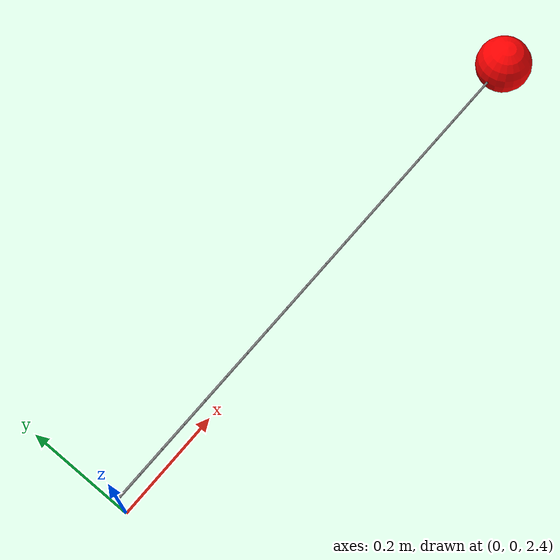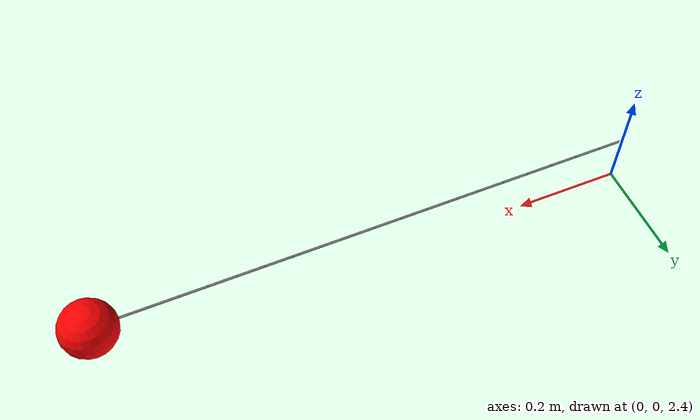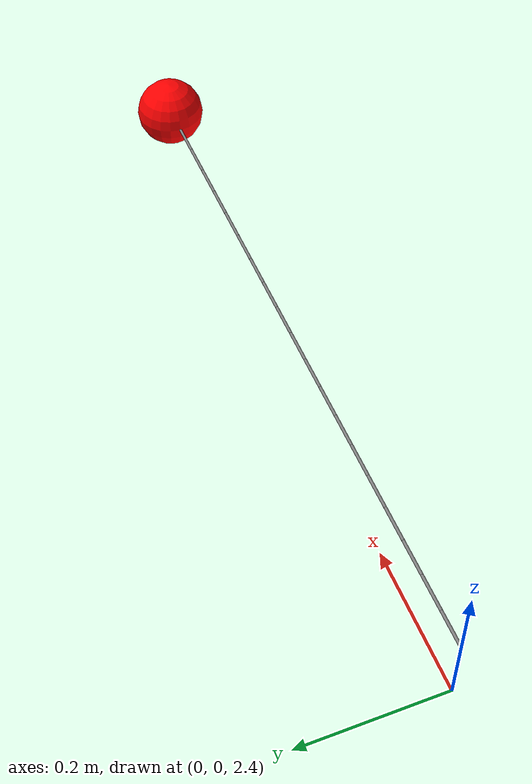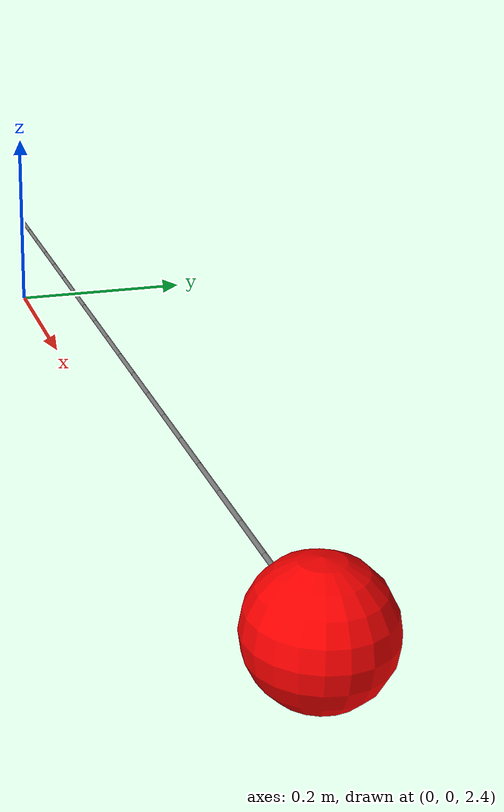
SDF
<sdf version="1.9">
 <world name="UAV_slung_world">
  <plugin filename="gz-sim-physics-system" name="gz::sim::systems::Physics"/>
  <plugin filename="gz-sim-user-commands-system" name="gz::sim::systems::UserCommands"/>
  <plugin filename="gz-sim-scene-broadcaster-system" name="gz::sim::systems::SceneBroadcaster"/>
  <plugin filename="gz-sim-sensors-system" name="gz::sim::systems::Sensors">
   <render_engine>ogre2</render_engine>
  </plugin>
  <plugin filename="gz-sim-contact-system" name="gz::sim::systems::Contact"/>
  <plugin filename="gz-sim-wind-effects-system" name="gz::sim::systems::WindEffects">
   <force_approximation_scaling_factor>1</force_approximation_scaling_factor>
   <linear_velocity>0 0 0</linear_velocity>
  </plugin>
  <plugin filename="gz-sim-imu-system" name="gz::sim::systems::Imu"/>
  <plugin filename="gz-sim-magnetometer-system" name="gz::sim::systems::Magnetometer"/>
  <plugin filename="gz-sim-altimeter-system" name="gz::sim::systems::Altimeter"/>
  <plugin filename="gz-sim-navsat-system" name="gz::sim::systems::NavSat"/>
  <plugin filename="gz-sim-air-pressure-system" name="gz::sim::systems::AirPressure"/>
  <physics type="ode">
   <max_step_size>0.0025</max_step_size>
   <real_time_factor>1.0</real_time_factor>
   <real_time_update_rate>400</real_time_update_rate>
  </physics>
  <gravity>0 0 -9.81</gravity>
  <magnetic_field>6e-06 2.3e-05 -4.2e-05</magnetic_field>
  <atmosphere type="adiabatic"/>
  <scene>
   <grid>true</grid>
   <ambient>0.4 0.4 0.4 1</ambient>
   <background>0.7 0.7 0.7 1</background>
   <shadows>true</shadows>
  </scene>
  <model name="ground_plane">
   <static>true</static>
   <link name="link">
    <collision name="collision">
     <geometry><plane><normal>0 0 1</normal><size>500 500</size></plane></geometry>
    </collision>
    <visual name="visual">
     <geometry><plane><normal>0 0 1</normal><size>500 500</size></plane></geometry>
     <material>
      <ambient>0.8 0.8 0.8 1</ambient>
      <diffuse>0.8 0.8 0.8 1</diffuse>
      <specular>0.8 0.8 0.8 1</specular>
     </material>
    </visual>
    <inertial>
     <mass>1</mass>
     <inertia><ixx>1</ixx><ixy>0</ixy><ixz>0</ixz><iyy>1</iyy><iyz>0</iyz><izz>1</izz></inertia>
    </inertial>
   </link>
  </model>
  <light name="sunUTC" type="directional">
   <pose>0 0 500 0 -0 0</pose>
   <intensity>1</intensity>
   <direction>0.001 0.625 -0.78</direction>
   <diffuse>0.904 0.904 0.904 1</diffuse>
   <specular>0.271 0.271 0.271 1</specular>
   <attenuation><range>2000</range><linear>0</linear><constant>1</constant><quadratic>0</quadratic></attenuation>
  </light>
  <spherical_coordinates>
   <surface_model>EARTH_WGS84</surface_model>
   <world_frame_orientation>ENU</world_frame_orientation>
   <latitude_deg>24.623911</latitude_deg>
   <longitude_deg>118.087898</longitude_deg>
   <elevation>0</elevation>
  </spherical_coordinates>
  <include>
   <name>payload_ball</name>
   <pose>1.0 0 2.5 0 0 0</pose>
   <uri>model://payload_ball</uri>
   <plugin filename="gz-sim-pose-publisher-system" name="gz::sim::systems::PosePublisher">
    <publish_link_pose>false</publish_link_pose>
    <publish_visual_pose>false</publish_visual_pose>
    <publish_collision_pose>false</publish_collision_pose>
    <publish_sensor_pose>false</publish_sensor_pose>
    <publish_model_pose>true</publish_model_pose>
    <use_pose_vector_msg>false</use_pose_vector_msg>
    <update_frequency>200</update_frequency>
   </plugin>
  </include>
  <include><name>rope</name><pose>1.0 0 2.5 0 0 3.14159</pose><uri>model://rope</uri></include>
  <joint name="uav_rope_joint" type="fixed">
   <parent>rope::end_link</parent>
   <child>x500_mono_cam_down::base_link</child>
  </joint>
  <joint name="ball_rope_joint" type="fixed">
   <parent>payload_ball::ball_link</parent>
   <child>rope::begin_link</child>
  </joint>
 </world>
</sdf>

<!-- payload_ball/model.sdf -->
<sdf version='1.9'>
  <model name="red_ball">
    <link name="ball_link">
      <pose>0 0 0 0 0 0</pose>

      <collision name="collision">
        <geometry>
          <sphere>
            <radius>0.05</radius>
          </sphere>
        </geometry>
      </collision>

      <visual name="visual">
        <geometry>
          <sphere>
            <radius>0.05</radius>
          </sphere>
        </geometry>
        <material>
          <ambient>1.0 0.0 0.0 1</ambient>
          <diffuse>1.0 0.0 0.0 1</diffuse>
          <specular>0.3 0.1 0.1 1</specular>
        </material>
      </visual>

      <inertial>
        <mass>0.5</mass>
        <inertia>
          <ixx>0.001</ixx>
          <iyy>0.001</iyy>
          <izz>0.001</izz>
          <ixy>0</ixy>
          <ixz>0</ixz>
          <iyz>0</iyz>
        </inertia>
      </inertial>

      <sensor name="ball_imu" type="imu">
        <always_on>1</always_on>
        <update_rate>250</update_rate>
        <visualize>true</visualize>
        <imu>
          </imu>
      </sensor>

    </link>
  </model>
</sdf>

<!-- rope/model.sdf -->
<sdf version='1.9'>
  <model name='rope'>
    <enable_wind>true</enable_wind>
    <static>false</static>
    <link name='begin_link'>
      <pose>0 0 0 0 0 0</pose>
      <inertial>
        <mass>0.001</mass>
        <inertia>
          <ixx>4e-08</ixx>
          <iyy>4e-08</iyy>
          <izz>4e-08</izz>
        </inertia>
      </inertial>
       <collision name='begin_link_collision'>
        <geometry>
          <sphere>
            <radius>0.002</radius>
          </sphere>
        </geometry>
      </collision>
      <visual name='begin_link_visual'>
        <geometry>
          <sphere>
            <radius>0.002</radius>
          </sphere>
        </geometry>
      </visual>
    </link>
    <link name='link_0'>
      <pose>0.025 0 0 0 1.570796326794896558 0</pose>
      <inertial>
        <mass>0.0024</mass>
        <inertia>
          <ixx>5.1e-05</ixx>
          <iyy>5.1e-05</iyy>
          <izz>3.0e-06</izz>
        </inertia>
      </inertial>
       <collision name='link_0_collision'>
        <geometry>
          <cylinder>
            <length>0.05</length>
            <radius>0.002</radius>
          </cylinder>
        </geometry>
      </collision>
      <visual name='link_0_vis'>
        <geometry>
          <cylinder>
            <length>0.05</length>
            <radius>0.002</radius>
          </cylinder>
        </geometry>
        <material>
          <ambient>0.5 0.5 0.5 1</ambient>
          <diffuse>0.5 0.5 0.5 1</diffuse>
          <specular>0.5 0.5 0.5 1</specular>
        </material>
      </visual>
      <velocity_decay>
        <linear>0.1</linear>
        <angular>0.1</angular>
      </velocity_decay>
    </link>
    <joint name='begin_joint_2' type='universal'>
      <pose relative_to='begin_link'/>
      <child>link_0</child>
      <parent>begin_link</parent>
      <axis>
        <xyz>1 0 0</xyz>
        <dynamics>
          <damping>0.05</damping>
        </dynamics>
      </axis>
      <axis2>
        <xyz>0 1 0</xyz>
        <dynamics>
          <damping>0.05</damping>
        </dynamics>
      </axis2>
    </joint>

    <link name='link_1'>
      <pose>0.07500000000000001 0 0 0 1.570796326794896558 0</pose>
      <inertial>
        <mass>0.0024</mass>
        <inertia>
          <ixx>5.1e-05</ixx>
          <iyy>5.1e-05</iyy>
          <izz>3.0e-06</izz>
        </inertia>
      </inertial>
       <collision name='link_1_collision'>
        <geometry>
          <cylinder>
            <length>0.05</length>
            <radius>0.002</radius>
          </cylinder>
        </geometry>
      </collision>
      <visual name='link_1_vis'>
        <geometry>
          <cylinder>
            <length>0.05</length>
            <radius>0.002</radius>
          </cylinder>
        </geometry>
        <material>
          <ambient>0.5 0.5 0.5 1</ambient>
          <diffuse>0.5 0.5 0.5 1</diffuse>
          <specular>0.5 0.5 0.5 1</specular>
        </material>
      </visual>
      <velocity_decay>
        <linear>0.1</linear>
        <angular>0.1</angular>
      </velocity_decay>
    </link>
    <joint name='joint_1_2' type='universal'>
      <pose relative_to='link_0'>0 0 0.025 0 0 0</pose>
      <child>link_1</child>
      <parent>link_0</parent>
      <axis>
        <xyz expressed_in='link_0'>1 0 0</xyz>
        <limit>
          <lower>-3.141592653589793</lower>
          <upper>3.141592653589793</upper>
          <effort>50.0</effort>
          <velocity>10</velocity>
        </limit>
        <dynamics>
          <damping>0.05</damping>
        </dynamics>
      </axis>
      <axis2>
        <xyz expressed_in='link_0'>0 1 0</xyz>
        <limit>
          <lower>-3.141592653589793</lower>
          <upper>3.141592653589793</upper>
          <effort>50.0</effort>
          <velocity>10</velocity>
        </limit>
        <dynamics>
          <damping>0.05</damping>
        </dynamics>
      </axis2>
    </joint>
    <link name='link_2'>
      <pose>0.125 0 0 0 1.570796326794896558 0</pose>
      <inertial>
        <mass>0.0024</mass>
        <inertia>
          <ixx>5.1e-05</ixx>
          <iyy>5.1e-05</iyy>
          <izz>3.0e-06</izz>
        </inertia>
      </inertial>
       <collision name='link_2_collision'>
        <geometry>
          <cylinder>
            <length>0.05</length>
            <radius>0.002</radius>
          </cylinder>
        </geometry>
      </collision>
      <visual name='link_2_vis'>
        <geometry>
          <cylinder>
            <length>0.05</length>
            <radius>0.002</radius>
          </cylinder>
        </geometry>
        <material>
          <ambient>0.5 0.5 0.5 1</ambient>
          <diffuse>0.5 0.5 0.5 1</diffuse>
          <specular>0.5 0.5 0.5 1</specular>
        </material>
      </visual>
      <velocity_decay>
        <linear>0.1</linear>
        <angular>0.1</angular>
      </velocity_decay>
    </link>
    <joint name='joint_2_2' type='universal'>
      <pose relative_to='link_1'>0 0 0.025 0 0 0</pose>
      <child>link_2</child>
      <parent>link_1</parent>
      <axis>
        <xyz expressed_in='link_1'>1 0 0</xyz>
        <limit>
          <lower>-3.141592653589793</lower>
          <upper>3.141592653589793</upper>
          <effort>50.0</effort>
          <velocity>10</velocity>
        </limit>
        <dynamics>
          <damping>0.05</damping>
        </dynamics>
      </axis>
      <axis2>
        <xyz expressed_in='link_1'>0 1 0</xyz>
        <limit>
          <lower>-3.141592653589793</lower>
          <upper>3.141592653589793</upper>
          <effort>50.0</effort>
          <velocity>10</velocity>
        </limit>
        <dynamics>
          <damping>0.05</damping>
        </dynamics>
      </axis2>
    </joint>
    <link name='link_3'>
      <pose>0.17500000000000002 0 0 0 1.570796326794896558 0</pose>
      <inertial>
        <mass>0.0024</mass>
        <inertia>
          <ixx>5.1e-05</ixx>
          <iyy>5.1e-05</iyy>
          <izz>3.0e-06</izz>
        </inertia>
      </inertial>
       <collision name='link_3_collision'>
        <geometry>
          <cylinder>
            <length>0.05</length>
            <radius>0.002</radius>
          </cylinder>
        </geometry>
      </collision>
      <visual name='link_3_vis'>
        <geometry>
          <cylinder>
            <length>0.05</length>
            <radius>0.002</radius>
          </cylinder>
        </geometry>
        <material>
          <ambient>0.5 0.5 0.5 1</ambient>
          <diffuse>0.5 0.5 0.5 1</diffuse>
          <specular>0.5 0.5 0.5 1</specular>
        </material>
      </visual>
      <velocity_decay>
        <linear>0.1</linear>
        <angular>0.1</angular>
      </velocity_decay>
    </link>
    <joint name='joint_3_2' type='universal'>
      <pose relative_to='link_2'>0 0 0.025 0 0 0</pose>
      <child>link_3</child>
      <parent>link_2</parent>
      <axis>
        <xyz expressed_in='link_2'>1 0 0</xyz>
        <limit>
          <lower>-3.141592653589793</lower>
          <upper>3.141592653589793</upper>
          <effort>50.0</effort>
          <velocity>10</velocity>
        </limit>
        <dynamics>
          <damping>0.05</damping>
        </dynamics>
      </axis>
      <axis2>
        <xyz expressed_in='link_2'>0 1 0</xyz>
        <limit>
          <lower>-3.141592653589793</lower>
          <upper>3.141592653589793</upper>
          <effort>50.0</effort>
          <velocity>10</velocity>
        </limit>
        <dynamics>
          <damping>0.05</damping>
        </dynamics>
      </axis2>
    </joint>
    <link name='link_4'>
      <pose>0.225 0 0 0 1.570796326794896558 0</pose>
      <inertial>
        <mass>0.0024</mass>
        <inertia>
          <ixx>5.1e-05</ixx>
          <iyy>5.1e-05</iyy>
          <izz>3.0e-06</izz>
        </inertia>
      </inertial>
       <collision name='link_4_collision'>
        <geometry>
          <cylinder>
            <length>0.05</length>
            <radius>0.002</radius>
          </cylinder>
        </geometry>
      </collision>
      <visual name='link_4_vis'>
        <geometry>
          <cylinder>
            <length>0.05</length>
            <radius>0.002</radius>
          </cylinder>
        </geometry>
        <material>
          <ambient>0.5 0.5 0.5 1</ambient>
          <diffuse>0.5 0.5 0.5 1</diffuse>
          <specular>0.5 0.5 0.5 1</specular>
        </material>
      </visual>
      <velocity_decay>
        <linear>0.1</linear>
        <angular>0.1</angular>
      </velocity_decay>
    </link>
    <joint name='joint_4_2' type='universal'>
      <pose relative_to='link_3'>0 0 0.025 0 0 0</pose>
      <child>link_4</child>
      <parent>link_3</parent>
      <axis>
        <xyz expressed_in='link_3'>1 0 0</xyz>
        <limit>
          <lower>-3.141592653589793</lower>
          <upper>3.141592653589793</upper>
          <effort>50.0</effort>
          <velocity>10</velocity>
        </limit>
        <dynamics>
          <damping>0.05</damping>
        </dynamics>
      </axis>
      <axis2>
        <xyz expressed_in='link_3'>0 1 0</xyz>
        <limit>
          <lower>-3.141592653589793</lower>
          <upper>3.141592653589793</upper>
          <effort>50.0</effort>
          <velocity>10</velocity>
        </limit>
        <dynamics>
          <damping>0.05</damping>
        </dynamics>
      </axis2>
    </joint>
    <link name='link_5'>
      <pose>0.275 0 0 0 1.570796326794896558 0</pose>
      <inertial>
        <mass>0.0024</mass>
        <inertia>
          <ixx>5.1e-05</ixx>
          <iyy>5.1e-05</iyy>
          <izz>3.0e-06</izz>
        </inertia>
      </inertial>
       <collision name='link_5_collision'>
        <geometry>
          <cylinder>
            <length>0.05</length>
            <radius>0.002</radius>
          </cylinder>
        </geometry>
      </collision>
      <visual name='link_5_vis'>
        <geometry>
          <cylinder>
            <length>0.05</length>
            <radius>0.002</radius>
          </cylinder>
        </geometry>
        <material>
          <ambient>0.5 0.5 0.5 1</ambient>
          <diffuse>0.5 0.5 0.5 1</diffuse>
          <specular>0.5 0.5 0.5 1</specular>
        </material>
      </visual>
      <velocity_decay>
        <linear>0.1</linear>
        <angular>0.1</angular>
      </velocity_decay>
    </link>
    <joint name='joint_5_2' type='universal'>
      <pose relative_to='link_4'>0 0 0.025 0 0 0</pose>
      <child>link_5</child>
      <parent>link_4</parent>
      <axis>
        <xyz expressed_in='link_4'>1 0 0</xyz>
        <limit>
          <lower>-3.141592653589793</lower>
          <upper>3.141592653589793</upper>
          <effort>50.0</effort>
          <velocity>10</velocity>
        </limit>
        <dynamics>
          <damping>0.05</damping>
        </dynamics>
      </axis>
      <axis2>
        <xyz expressed_in='link_4'>0 1 0</xyz>
        <limit>
          <lower>-3.141592653589793</lower>
          <upper>3.141592653589793</upper>
          <effort>50.0</effort>
          <velocity>10</velocity>
        </limit>
        <dynamics>
          <damping>0.05</damping>
        </dynamics>
      </axis2>
    </joint>
    <link name='link_6'>
      <pose>0.32500000000000007 0 0 0 1.570796326794896558 0</pose>
      <inertial>
        <mass>0.0024</mass>
        <inertia>
          <ixx>5.1e-05</ixx>
          <iyy>5.1e-05</iyy>
          <izz>3.0e-06</izz>
        </inertia>
      </inertial>
       <collision name='link_6_collision'>
        <geometry>
          <cylinder>
            <length>0.05</length>
            <radius>0.002</radius>
          </cylinder>
        </geometry>
      </collision>
      <visual name='link_6_vis'>
        <geometry>
          <cylinder>
            <length>0.05</length>
            <radius>0.002</radius>
          </cylinder>
        </geometry>
        <material>
          <ambient>0.5 0.5 0.5 1</ambient>
          <diffuse>0.5 0.5 0.5 1</diffuse>
          <specular>0.5 0.5 0.5 1</specular>
        </material>
      </visual>
      <velocity_decay>
        <linear>0.1</linear>
        <angular>0.1</angular>
      </velocity_decay>
    </link>
    <joint name='joint_6_2' type='universal'>
      <pose relative_to='link_5'>0 0 0.025 0 0 0</pose>
      <child>link_6</child>
      <parent>link_5</parent>
      <axis>
        <xyz expressed_in='link_5'>1 0 0</xyz>
        <limit>
          <lower>-3.141592653589793</lower>
          <upper>3.141592653589793</upper>
          <effort>50.0</effort>
          <velocity>10</velocity>
        </limit>
        <dynamics>
          <damping>0.05</damping>
        </dynamics>
      </axis>
      <axis2>
        <xyz expressed_in='link_5'>0 1 0</xyz>
        <limit>
          <lower>-3.141592653589793</lower>
          <upper>3.141592653589793</upper>
          <effort>50.0</effort>
          <velocity>10</velocity>
        </limit>
        <dynamics>
          <damping>0.05</damping>
        </dynamics>
      </axis2>
    </joint>
    <link name='link_7'>
      <pose>0.37500000000000006 0 0 0 1.570796326794896558 0</pose>
      <inertial>
        <mass>0.0024</mass>
        <inertia>
          <ixx>5.1e-05</ixx>
          <iyy>5.1e-05</iyy>
          <izz>3.0e-06</izz>
        </inertia>
      </inertial>
       <collision name='link_7_collision'>
        <geometry>
          <cylinder>
            <length>0.05</length>
            <radius>0.002</radius>
          </cylinder>
        </geometry>
      </collision>
      <visual name='link_7_vis'>
        <geometry>
          <cylinder>
            <length>0.05</length>
            <radius>0.002</radius>
          </cylinder>
        </geometry>
        <material>
          <ambient>0.5 0.5 0.5 1</ambient>
          <diffuse>0.5 0.5 0.5 1</diffuse>
          <specular>0.5 0.5 0.5 1</specular>
        </material>
      </visual>
      <velocity_decay>
        <linear>0.1</linear>
        <angular>0.1</angular>
      </velocity_decay>
    </link>
    <joint name='joint_7_2' type='universal'>
      <pose relative_to='link_6'>0 0 0.025 0 0 0</pose>
      <child>link_7</child>
      <parent>link_6</parent>
      <axis>
        <xyz expressed_in='link_6'>1 0 0</xyz>
        <limit>
          <lower>-3.141592653589793</lower>
          <upper>3.141592653589793</upper>
          <effort>50.0</effort>
          <velocity>10</velocity>
        </limit>
        <dynamics>
          <damping>0.05</damping>
        </dynamics>
      </axis>
      <axis2>
        <xyz expressed_in='link_6'>0 1 0</xyz>
        <limit>
          <lower>-3.141592653589793</lower>
          <upper>3.141592653589793</upper>
          <effort>50.0</effort>
          <velocity>10</velocity>
        </limit>
        <dynamics>
          <damping>0.05</damping>
        </dynamics>
      </axis2>
    </joint>
    <link name='link_8'>
      <pose>0.42500000000000004 0 0 0 1.570796326794896558 0</pose>
      <inertial>
        <mass>0.0024</mass>
        <inertia>
          <ixx>5.1e-05</ixx>
          <iyy>5.1e-05</iyy>
          <izz>3.0e-06</izz>
        </inertia>
      </inertial>
       <collision name='link_8_collision'>
        <geometry>
          <cylinder>
            <length>0.05</length>
            <radius>0.002</radius>
          </cylinder>
        </geometry>
      </collision>
      <visual name='link_8_vis'>
        <geometry>
          <cylinder>
            <length>0.05</length>
            <radius>0.002</radius>
          </cylinder>
        </geometry>
        <material>
          <ambient>0.5 0.5 0.5 1</ambient>
          <diffuse>0.5 0.5 0.5 1</diffuse>
          <specular>0.5 0.5 0.5 1</specular>
        </material>
      </visual>
      <velocity_decay>
        <linear>0.1</linear>
        <angular>0.1</angular>
      </velocity_decay>
    </link>
    <joint name='joint_8_2' type='universal'>
      <pose relative_to='link_7'>0 0 0.025 0 0 0</pose>
      <child>link_8</child>
      <parent>link_7</parent>
      <axis>
        <xyz expressed_in='link_7'>1 0 0</xyz>
        <limit>
          <lower>-3.141592653589793</lower>
          <upper>3.141592653589793</upper>
          <effort>50.0</effort>
          <velocity>10</velocity>
        </limit>
        <dynamics>
          <damping>0.05</damping>
        </dynamics>
      </axis>
      <axis2>
        <xyz expressed_in='link_7'>0 1 0</xyz>
        <limit>
          <lower>-3.141592653589793</lower>
          <upper>3.141592653589793</upper>
          <effort>50.0</effort>
          <velocity>10</velocity>
        </limit>
        <dynamics>
          <damping>0.05</damping>
        </dynamics>
      </axis2>
    </joint>
    <link name='link_9'>
      <pose>0.47500000000000003 0 0 0 1.570796326794896558 0</pose>
      <inertial>
        <mass>0.0024</mass>
        <inertia>
          <ixx>5.1e-05</ixx>
          <iyy>5.1e-05</iyy>
          <izz>3.0e-06</izz>
        </inertia>
      </inertial>
       <collision name='link_9_collision'>
        <geometry>
          <cylinder>
            <length>0.05</length>
            <radius>0.002</radius>
          </cylinder>
        </geometry>
      </collision>
      <visual name='link_9_vis'>
        <geometry>
          <cylinder>
            <length>0.05</length>
            <radius>0.002</radius>
          </cylinder>
        </geometry>
        <material>
          <ambient>0.5 0.5 0.5 1</ambient>
          <diffuse>0.5 0.5 0.5 1</diffuse>
          <specular>0.5 0.5 0.5 1</specular>
        </material>
      </visual>
      <velocity_decay>
        <linear>0.1</linear>
        <angular>0.1</angular>
      </velocity_decay>
    </link>
    <joint name='joint_9_2' type='universal'>
      <pose relative_to='link_8'>0 0 0.025 0 0 0</pose>
      <child>link_9</child>
      <parent>link_8</parent>
      <axis>
        <xyz expressed_in='link_8'>1 0 0</xyz>
        <limit>
          <lower>-3.141592653589793</lower>
          <upper>3.141592653589793</upper>
          <effort>50.0</effort>
          <velocity>10</velocity>
        </limit>
        <dynamics>
          <damping>0.05</damping>
        </dynamics>
      </axis>
      <axis2>
        <xyz expressed_in='link_8'>0 1 0</xyz>
        <limit>
          <lower>-3.141592653589793</lower>
          <upper>3.141592653589793</upper>
          <effort>50.0</effort>
          <velocity>10</velocity>
        </limit>
        <dynamics>
          <damping>0.05</damping>
        </dynamics>
      </axis2>
    </joint>
    <link name='link_10'>
      <pose>0.525 0 0 0 1.570796326794896558 0</pose>
      <inertial>
        <mass>0.0024</mass>
        <inertia>
          <ixx>5.1e-05</ixx>
          <iyy>5.1e-05</iyy>
          <izz>3.0e-06</izz>
        </inertia>
      </inertial>
       <collision name='link_10_collision'>
        <geometry>
          <cylinder>
            <length>0.05</length>
            <radius>0.002</radius>
          </cylinder>
        </geometry>
      </collision>
      <visual name='link_10_vis'>
        <geometry>
          <cylinder>
            <length>0.05</length>
            <radius>0.002</radius>
          </cylinder>
        </geometry>
        <material>
          <ambient>0.5 0.5 0.5 1</ambient>
          <diffuse>0.5 0.5 0.5 1</diffuse>
          <specular>0.5 0.5 0.5 1</specular>
        </material>
      </visual>
      <velocity_decay>
        <linear>0.1</linear>
        <angular>0.1</angular>
      </velocity_decay>
      <sensor name="rope_imu" type="imu">
        <always_on>1</always_on>
        <update_rate>250</update_rate>
        <visualize>true</visualize>
      </sensor>
    </link>
    <joint name='joint_10_2' type='universal'>
      <pose relative_to='link_9'>0 0 0.025 0 0 0</pose>
      <child>link_10</child>
      <parent>link_9</parent>
      <axis>
        <xyz expressed_in='link_9'>1 0 0</xyz>
        <limit>
          <lower>-3.141592653589793</lower>
          <upper>3.141592653589793</upper>
          <effort>50.0</effort>
          <velocity>10</velocity>
        </limit>
        <dynamics>
          <damping>0.05</damping>
        </dynamics>
      </axis>
      <axis2>
        <xyz expressed_in='link_9'>0 1 0</xyz>
        <limit>
          <lower>-3.141592653589793</lower>
          <upper>3.141592653589793</upper>
          <effort>50.0</effort>
          <velocity>10</velocity>
        </limit>
        <dynamics>
          <damping>0.05</damping>
        </dynamics>
      </axis2>
    </joint>
    <link name='link_11'>
      <pose>0.5750000000000001 0 0 0 1.570796326794896558 0</pose>
      <inertial>
        <mass>0.0024</mass>
        <inertia>
          <ixx>5.1e-05</ixx>
          <iyy>5.1e-05</iyy>
          <izz>3.0e-06</izz>
        </inertia>
      </inertial>
       <collision name='link_11_collision'>
        <geometry>
          <cylinder>
            <length>0.05</length>
            <radius>0.002</radius>
          </cylinder>
        </geometry>
      </collision>
      <visual name='link_11_vis'>
        <geometry>
          <cylinder>
            <length>0.05</length>
            <radius>0.002</radius>
          </cylinder>
        </geometry>
        <material>
          <ambient>0.5 0.5 0.5 1</ambient>
          <diffuse>0.5 0.5 0.5 1</diffuse>
          <specular>0.5 0.5 0.5 1</specular>
        </material>
      </visual>
      <velocity_decay>
        <linear>0.1</linear>
        <angular>0.1</angular>
      </velocity_decay>
    </link>
    <joint name='joint_11_2' type='universal'>
      <pose relative_to='link_10'>0 0 0.025 0 0 0</pose>
      <child>link_11</child>
      <parent>link_10</parent>
      <axis>
        <xyz expressed_in='link_10'>1 0 0</xyz>
        <limit>
          <lower>-3.141592653589793</lower>
          <upper>3.141592653589793</upper>
          <effort>50.0</effort>
          <velocity>10</velocity>
        </limit>
        <dynamics>
          <damping>0.05</damping>
        </dynamics>
      </axis>
      <axis2>
        <xyz expressed_in='link_10'>0 1 0</xyz>
        <limit>
          <lower>-3.141592653589793</lower>
          <upper>3.141592653589793</upper>
          <effort>50.0</effort>
          <velocity>10</velocity>
        </limit>
        <dynamics>
          <damping>0.05</damping>
        </dynamics>
      </axis2>
    </joint>
    <link name='link_12'>
      <pose>0.6250000000000001 0 0 0 1.570796326794896558 0</pose>
      <inertial>
        <mass>0.0024</mass>
        <inertia>
          <ixx>5.1e-05</ixx>
          <iyy>5.1e-05</iyy>
          <izz>3.0e-06</izz>
        </inertia>
      </inertial>
       <collision name='link_12_collision'>
        <geometry>
          <cylinder>
            <length>0.05</length>
            <radius>0.002</radius>
          </cylinder>
        </geometry>
      </collision>
      <visual name='link_12_vis'>
        <geometry>
          <cylinder>
            <length>0.05</length>
            <radius>0.002</radius>
          </cylinder>
        </geometry>
        <material>
          <ambient>0.5 0.5 0.5 1</ambient>
          <diffuse>0.5 0.5 0.5 1</diffuse>
          <specular>0.5 0.5 0.5 1</specular>
        </material>
      </visual>
      <velocity_decay>
        <linear>0.1</linear>
        <angular>0.1</angular>
      </velocity_decay>
    </link>
    <joint name='joint_12_2' type='universal'>
      <pose relative_to='link_11'>0 0 0.025 0 0 0</pose>
      <child>link_12</child>
      <parent>link_11</parent>
      <axis>
        <xyz expressed_in='link_11'>1 0 0</xyz>
        <limit>
          <lower>-3.141592653589793</lower>
          <upper>3.141592653589793</upper>
          <effort>50.0</effort>
          <velocity>10</velocity>
        </limit>
        <dynamics>
          <damping>0.05</damping>
        </dynamics>
      </axis>
      <axis2>
        <xyz expressed_in='link_11'>0 1 0</xyz>
        <limit>
          <lower>-3.141592653589793</lower>
          <upper>3.141592653589793</upper>
          <effort>50.0</effort>
          <velocity>10</velocity>
        </limit>
        <dynamics>
          <damping>0.05</damping>
        </dynamics>
      </axis2>
    </joint>
    <link name='link_13'>
      <pose>0.675 0 0 0 1.570796326794896558 0</pose>
      <inertial>
        <mass>0.0024</mass>
        <inertia>
          <ixx>5.1e-05</ixx>
          <iyy>5.1e-05</iyy>
          <izz>3.0e-06</izz>
        </inertia>
      </inertial>
       <collision name='link_13_collision'>
        <geometry>
          <cylinder>
            <length>0.05</length>
            <radius>0.002</radius>
          </cylinder>
        </geometry>
      </collision>
      <visual name='link_13_vis'>
        <geometry>
          <cylinder>
            <length>0.05</length>
            <radius>0.002</radius>
          </cylinder>
        </geometry>
        <material>
          <ambient>0.5 0.5 0.5 1</ambient>
          <diffuse>0.5 0.5 0.5 1</diffuse>
          <specular>0.5 0.5 0.5 1</specular>
        </material>
      </visual>
      <velocity_decay>
        <linear>0.1</linear>
        <angular>0.1</angular>
      </velocity_decay>
    </link>
    <joint name='joint_13_2' type='universal'>
      <pose relative_to='link_12'>0 0 0.025 0 0 0</pose>
      <child>link_13</child>
      <parent>link_12</parent>
      <axis>
        <xyz expressed_in='link_12'>1 0 0</xyz>
        <limit>
          <lower>-3.141592653589793</lower>
          <upper>3.141592653589793</upper>
          <effort>50.0</effort>
          <velocity>10</velocity>
        </limit>
        <dynamics>
          <damping>0.05</damping>
        </dynamics>
      </axis>
      <axis2>
        <xyz expressed_in='link_12'>0 1 0</xyz>
        <limit>
          <lower>-3.141592653589793</lower>
          <upper>3.141592653589793</upper>
          <effort>50.0</effort>
          <velocity>10</velocity>
        </limit>
        <dynamics>
          <damping>0.05</damping>
        </dynamics>
      </axis2>
    </joint>
    <link name='link_14'>
      <pose>0.7250000000000001 0 0 0 1.570796326794896558 0</pose>
      <inertial>
        <mass>0.0024</mass>
        <inertia>
          <ixx>5.1e-05</ixx>
          <iyy>5.1e-05</iyy>
          <izz>3.0e-06</izz>
        </inertia>
      </inertial>
       <collision name='link_14_collision'>
        <geometry>
          <cylinder>
            <length>0.05</length>
            <radius>0.002</radius>
          </cylinder>
        </geometry>
      </collision>
      <visual name='link_14_vis'>
        <geometry>
          <cylinder>
            <length>0.05</length>
            <radius>0.002</radius>
          </cylinder>
        </geometry>
        <material>
          <ambient>0.5 0.5 0.5 1</ambient>
          <diffuse>0.5 0.5 0.5 1</diffuse>
          <specular>0.5 0.5 0.5 1</specular>
        </material>
      </visual>
      <velocity_decay>
        <linear>0.1</linear>
        <angular>0.1</angular>
      </velocity_decay>
    </link>
    <joint name='joint_14_2' type='universal'>
      <pose relative_to='link_13'>0 0 0.025 0 0 0</pose>
      <child>link_14</child>
      <parent>link_13</parent>
      <axis>
        <xyz expressed_in='link_13'>1 0 0</xyz>
        <limit>
          <lower>-3.141592653589793</lower>
          <upper>3.141592653589793</upper>
          <effort>50.0</effort>
          <velocity>10</velocity>
        </limit>
        <dynamics>
          <damping>0.05</damping>
        </dynamics>
      </axis>
      <axis2>
        <xyz expressed_in='link_13'>0 1 0</xyz>
        <limit>
          <lower>-3.141592653589793</lower>
          <upper>3.141592653589793</upper>
          <effort>50.0</effort>
          <velocity>10</velocity>
        </limit>
        <dynamics>
          <damping>0.05</damping>
        </dynamics>
      </axis2>
    </joint>
    <link name='link_15'>
      <pose>0.775 0 0 0 1.570796326794896558 0</pose>
      <inertial>
        <mass>0.0024</mass>
        <inertia>
          <ixx>5.1e-05</ixx>
          <iyy>5.1e-05</iyy>
          <izz>3.0e-06</izz>
        </inertia>
      </inertial>
       <collision name='link_15_collision'>
        <geometry>
          <cylinder>
            <length>0.05</length>
            <radius>0.002</radius>
          </cylinder>
        </geometry>
      </collision>
      <visual name='link_15_vis'>
        <geometry>
          <cylinder>
            <length>0.05</length>
            <radius>0.002</radius>
          </cylinder>
        </geometry>
        <material>
          <ambient>0.5 0.5 0.5 1</ambient>
          <diffuse>0.5 0.5 0.5 1</diffuse>
          <specular>0.5 0.5 0.5 1</specular>
        </material>
      </visual>
      <velocity_decay>
        <linear>0.1</linear>
        <angular>0.1</angular>
      </velocity_decay>
    </link>
    <joint name='joint_15_2' type='universal'>
      <pose relative_to='link_14'>0 0 0.025 0 0 0</pose>
      <child>link_15</child>
      <parent>link_14</parent>
      <axis>
        <xyz expressed_in='link_14'>1 0 0</xyz>
        <limit>
          <lower>-3.141592653589793</lower>
          <upper>3.141592653589793</upper>
          <effort>50.0</effort>
          <velocity>10</velocity>
        </limit>
        <dynamics>
          <damping>0.05</damping>
        </dynamics>
      </axis>
      <axis2>
        <xyz expressed_in='link_14'>0 1 0</xyz>
        <limit>
          <lower>-3.141592653589793</lower>
          <upper>3.141592653589793</upper>
          <effort>50.0</effort>
          <velocity>10</velocity>
        </limit>
        <dynamics>
          <damping>0.05</damping>
        </dynamics>
      </axis2>
    </joint>
    <link name='link_16'>
      <pose>0.8250000000000001 0 0 0 1.570796326794896558 0</pose>
      <inertial>
        <mass>0.0024</mass>
        <inertia>
          <ixx>5.1e-05</ixx>
          <iyy>5.1e-05</iyy>
          <izz>3.0e-06</izz>
        </inertia>
      </inertial>
       <collision name='link_16_collision'>
        <geometry>
          <cylinder>
            <length>0.05</length>
            <radius>0.002</radius>
          </cylinder>
        </geometry>
      </collision>
      <visual name='link_16_vis'>
        <geometry>
          <cylinder>
            <length>0.05</length>
            <radius>0.002</radius>
          </cylinder>
        </geometry>
        <material>
          <ambient>0.5 0.5 0.5 1</ambient>
          <diffuse>0.5 0.5 0.5 1</diffuse>
          <specular>0.5 0.5 0.5 1</specular>
        </material>
      </visual>
      <velocity_decay>
        <linear>0.1</linear>
        <angular>0.1</angular>
      </velocity_decay>
    </link>
    <joint name='joint_16_2' type='universal'>
      <pose relative_to='link_15'>0 0 0.025 0 0 0</pose>
      <child>link_16</child>
      <parent>link_15</parent>
      <axis>
        <xyz expressed_in='link_15'>1 0 0</xyz>
        <limit>
          <lower>-3.141592653589793</lower>
          <upper>3.141592653589793</upper>
          <effort>50.0</effort>
          <velocity>10</velocity>
        </limit>
        <dynamics>
          <damping>0.05</damping>
        </dynamics>
      </axis>
      <axis2>
        <xyz expressed_in='link_15'>0 1 0</xyz>
        <limit>
          <lower>-3.141592653589793</lower>
          <upper>3.141592653589793</upper>
          <effort>50.0</effort>
          <velocity>10</velocity>
        </limit>
        <dynamics>
          <damping>0.05</damping>
        </dynamics>
      </axis2>
    </joint>
    <link name='link_17'>
      <pose>0.8750000000000001 0 0 0 1.570796326794896558 0</pose>
      <inertial>
        <mass>0.0024</mass>
        <inertia>
          <ixx>5.1e-05</ixx>
          <iyy>5.1e-05</iyy>
          <izz>3.0e-06</izz>
        </inertia>
      </inertial>
       <collision name='link_17_collision'>
        <geometry>
          <cylinder>
            <length>0.05</length>
            <radius>0.002</radius>
          </cylinder>
        </geometry>
      </collision>
      <visual name='link_17_vis'>
        <geometry>
          <cylinder>
            <length>0.05</length>
            <radius>0.002</radius>
          </cylinder>
        </geometry>
        <material>
          <ambient>0.5 0.5 0.5 1</ambient>
          <diffuse>0.5 0.5 0.5 1</diffuse>
          <specular>0.5 0.5 0.5 1</specular>
        </material>
      </visual>
      <velocity_decay>
        <linear>0.1</linear>
        <angular>0.1</angular>
      </velocity_decay>
    </link>
    <joint name='joint_17_2' type='universal'>
      <pose relative_to='link_16'>0 0 0.025 0 0 0</pose>
      <child>link_17</child>
      <parent>link_16</parent>
      <axis>
        <xyz expressed_in='link_16'>1 0 0</xyz>
        <limit>
          <lower>-3.141592653589793</lower>
          <upper>3.141592653589793</upper>
          <effort>50.0</effort>
          <velocity>10</velocity>
        </limit>
        <dynamics>
          <damping>0.05</damping>
        </dynamics>
      </axis>
      <axis2>
        <xyz expressed_in='link_16'>0 1 0</xyz>
        <limit>
          <lower>-3.141592653589793</lower>
          <upper>3.141592653589793</upper>
          <effort>50.0</effort>
          <velocity>10</velocity>
        </limit>
        <dynamics>
          <damping>0.05</damping>
        </dynamics>
      </axis2>
    </joint>
    <link name='link_18'>
      <pose>0.925 0 0 0 1.570796326794896558 0</pose>
      <inertial>
        <mass>0.0024</mass>
        <inertia>
          <ixx>5.1e-05</ixx>
          <iyy>5.1e-05</iyy>
          <izz>3.0e-06</izz>
        </inertia>
      </inertial>
       <collision name='link_18_collision'>
        <geometry>
          <cylinder>
            <length>0.05</length>
            <radius>0.002</radius>
          </cylinder>
        </geometry>
      </collision>
      <visual name='link_18_vis'>
        <geometry>
          <cylinder>
            <length>0.05</length>
            <radius>0.002</radius>
          </cylinder>
        </geometry>
        <material>
          <ambient>0.5 0.5 0.5 1</ambient>
          <diffuse>0.5 0.5 0.5 1</diffuse>
          <specular>0.5 0.5 0.5 1</specular>
        </material>
      </visual>
      <velocity_decay>
        <linear>0.1</linear>
        <angular>0.1</angular>
      </velocity_decay>
    </link>
    <joint name='joint_18_2' type='universal'>
      <pose relative_to='link_17'>0 0 0.025 0 0 0</pose>
      <child>link_18</child>
      <parent>link_17</parent>
      <axis>
        <xyz expressed_in='link_17'>1 0 0</xyz>
        <limit>
          <lower>-3.141592653589793</lower>
          <upper>3.141592653589793</upper>
          <effort>50.0</effort>
          <velocity>10</velocity>
        </limit>
        <dynamics>
          <damping>0.05</damping>
        </dynamics>
      </axis>
      <axis2>
        <xyz expressed_in='link_17'>0 1 0</xyz>
        <limit>
          <lower>-3.141592653589793</lower>
          <upper>3.141592653589793</upper>
          <effort>50.0</effort>
          <velocity>10</velocity>
        </limit>
        <dynamics>
          <damping>0.05</damping>
        </dynamics>
      </axis2>
    </joint>
    <link name='link_19'>
      <pose>0.9750000000000001 0 0 0 1.570796326794896558 0</pose>
      <inertial>
        <mass>0.0024</mass>
        <inertia>
          <ixx>5.1e-05</ixx>
          <iyy>5.1e-05</iyy>
          <izz>3.0e-06</izz>
        </inertia>
      </inertial>
       <collision name='link_19_collision'>
        <geometry>
          <cylinder>
            <length>0.05</length>
            <radius>0.002</radius>
          </cylinder>
        </geometry>
      </collision>
      <visual name='link_19_vis'>
        <geometry>
          <cylinder>
            <length>0.05</length>
            <radius>0.002</radius>
          </cylinder>
        </geometry>
        <material>
          <ambient>0.5 0.5 0.5 1</ambient>
          <diffuse>0.5 0.5 0.5 1</diffuse>
          <specular>0.5 0.5 0.5 1</specular>
        </material>
      </visual>
      <velocity_decay>
        <linear>0.1</linear>
        <angular>0.1</angular>
      </velocity_decay>
    </link>
    <joint name='joint_19_2' type='universal'>
      <pose relative_to='link_18'>0 0 0.025 0 0 0</pose>
      <child>link_19</child>
      <parent>link_18</parent>
      <axis>
        <xyz expressed_in='link_18'>1 0 0</xyz>
        <limit>
          <lower>-3.141592653589793</lower>
          <upper>3.141592653589793</upper>
          <effort>50.0</effort>
          <velocity>10</velocity>
        </limit>
        <dynamics>
          <damping>0.05</damping>
        </dynamics>
      </axis>
      <axis2>
        <xyz expressed_in='link_18'>0 1 0</xyz>
        <limit>
          <lower>-3.141592653589793</lower>
          <upper>3.141592653589793</upper>
          <effort>50.0</effort>
          <velocity>10</velocity>
        </limit>
        <dynamics>
          <damping>0.05</damping>
        </dynamics>
      </axis2>
    </joint>
    <link name='end_link'>
      <pose>1.0 0 0 0 0 0</pose>
      <inertial>
        <mass>0.001</mass>
        <inertia>
          <ixx>4e-08</ixx>
          <iyy>4e-08</iyy>
          <izz>4e-08</izz>
        </inertia>
      </inertial>
       <collision name='end_link_collision'>
        <geometry>
          <sphere>
            <radius>0.002</radius>
          </sphere>
        </geometry>
      </collision>
      <visual name='end_link_visual'>
        <geometry>
          <sphere>
            <radius>0.002</radius>
          </sphere>
        </geometry>
      </visual>
    </link>
    <joint name='joint_end_1' type='universal'>
      <pose relative_to='end_link'/>
      <child>end_link</child>
      <parent>link_19</parent>
      <axis>
        <xyz>0 0 1</xyz>
        <dynamics>
          <damping>0.05</damping>
        </dynamics>
      </axis>
      <axis2>
        <xyz>0 1 0</xyz>
        <dynamics>
          <damping>0.05</damping>
        </dynamics>
      </axis2>
    </joint>
  </model>
</sdf>
